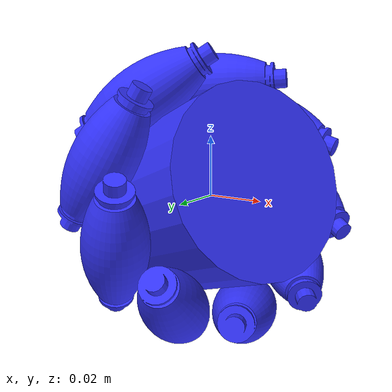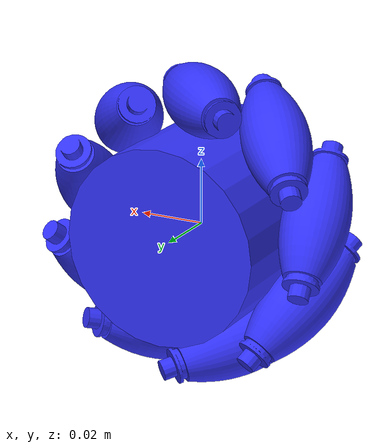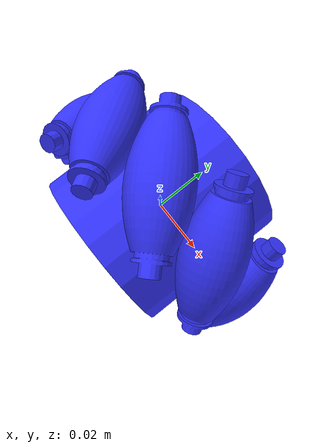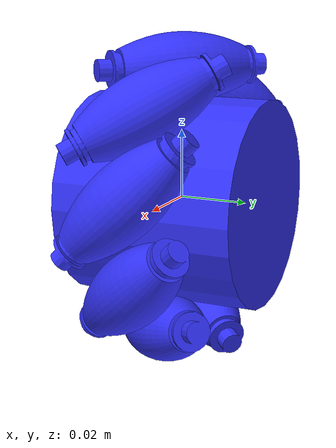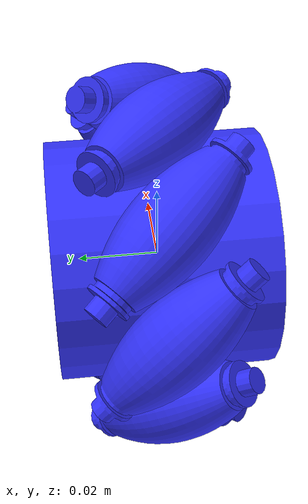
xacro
<?xml version="1.0"?>
<robot name="heale" xmlns:xacro="http://www.ros.org/wiki/xacro">

    <!-- Include wheel 1 *********************************************************************** -->
    <xacro:include filename="wheel_1.xacro"/>

    <!-- Include roller *********************************************************************** -->
    <xacro:include filename="roller.xacro"/>

    <!--front-left wheel**************************************************************************************************** -->
    <xacro:wheel_1 fl_or_br="front_left" />

    <!--front-left roller 1**************************************************************************************************** -->
    <xacro:roller frnt_or_bk="front" lft_or_rght="left" number="1" x="0" z="0.03833567" r="0" p="0.785398" y="0" />

    <!--front-left roller 2**************************************************************************************************** -->
    <xacro:roller frnt_or_bk="front" lft_or_rght="left" number="2"  x="0.02464169" z="0.02936683" r="-0.0872664" p="0.785398" y="0.698132" />

    <!--front-left roller 3**************************************************************************************************** -->
    <xacro:roller frnt_or_bk="front" lft_or_rght="left" number="3"  x="0.03775327" z="0.00665692" r="-0.1745328" p="0.785398" y="1.396263" />

    <!--front-left roller 4**************************************************************************************************** -->
    <xacro:roller frnt_or_bk="front" lft_or_rght="left" number="4"  x="0.03319966" z="-0.01916784" r="-0.26171799" p="0.785398" y="2.094395" />

    <!--front-left roller 5**************************************************************************************************** -->
    <xacro:roller frnt_or_bk="front" lft_or_rght="left" number="5"  x="0.01311157" z="-0.03602375" r="-0.26171799" p="0.785398" y="2.792527" />

    <!--front-left roller 6**************************************************************************************************** -->
    <xacro:roller frnt_or_bk="front" lft_or_rght="left" number="6"  x="-0.01311157" z="-0.03602375" r="-0.26171799" p="0.785398" y="3.490659" />

    <!--front-left roller 7**************************************************************************************************** -->
    <xacro:roller frnt_or_bk="front" lft_or_rght="left" number="7"  x="-0.03319966" z="-0.01916784" r="-0.26171799" p="0.785398" y="4.18879" />

    <!--front-left roller 8**************************************************************************************************** -->
    <xacro:roller frnt_or_bk="front" lft_or_rght="left" number="8"  x="-0.03775327" z="0.00665692" r="-0.1745328" p="0.785398" y="4.886922" />

    <!--front-left roller 9**************************************************************************************************** -->
    <xacro:roller frnt_or_bk="front" lft_or_rght="left" number="9"  x="-0.02464169" z="0.02936683" r="-0.0872664" p="0.785398" y="5.585054" />

</robot>

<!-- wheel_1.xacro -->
<robot name="heale" xmlns:xacro="http://www.ros.org/wiki/xacro">

<!-- Wheels macro ******************************************************************************************-->
    <xacro:macro name="wheel_1" params="fl_or_br">
        <!-- Wheel link -->
        <link name="${fl_or_br}_wheel">
            <inertial>
                <origin xyz="0.0 0.0 0.0" rpy="0.0 0.0 0.0" />
                <mass value="0.1" />
                <inertia ixx="0.01" ixy="0.0" ixz="0.0" iyy="0.01" iyz="0.0" izz="0.01" />
            </inertial>
            <visual name="">
                <origin xyz="0.0 0.0 0.0" rpy="1.57079632679 0.0 0.0" />
                <geometry>
                    <cylinder radius="0.030253505" length="0.05332" />
                </geometry>
                <material name="blue">
                    <color rgba="0.2 0.2 1 1"/>
                </material>
            </visual>
            <collision>
                <origin xyz="0.0 0.0 0.0" rpy="1.57079632679 0.0 0.0" />
                <geometry>
                    <cylinder radius="0.023253505" length="0.05332" />
                </geometry>
            </collision>
        </link>

        <!-- Foot print (Dummy Link)********************************************************************** -->
        <link name="foot_print">
        </link>

        <joint name="fp_to_main_body" type="fixed">
            <parent link="foot_print"/>
            <child link="${fl_or_br}_wheel"/>
            <origin xyz="0.0 0.0 0.0" rpy="0.0 0.0 0.0"/>
        </joint>

    </xacro:macro>

</robot>

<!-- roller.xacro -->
<robot name="heale" xmlns:xacro="http://www.ros.org/wiki/xacro">

  <!-- Rubber Wheel Macro -->
  <xacro:macro name="roller" params="frnt_or_bk lft_or_rght number x z r p y">

    <!-- Rubber Wheel link -->
    <link name="{frnt_or_bk}_${lft_or_rght}_${number}_roller">
      <inertial>
        <origin xyz="-9.3675E-17 -1.0686E-15 1.3045E-15" rpy="0 0 0" />
        <mass value="0.0052688" />
        <inertia
          ixx="7.0476E-07" ixy="-5.6311E-09" ixz="5.6325E-09"
          iyy="4.4776E-07" iyz="2.5718E-07" izz="4.4764E-07" />
      </inertial>

      <visual>
        <origin xyz="0.0 0.0 0.0" rpy="0 0 0" />
        <geometry>
          <mesh filename="package://mecanum_description/meshes/roller.STL" />
        </geometry>
        <material name="blue">
          <color rgba="0.2 0.2 1 1"/>
        </material>
      </visual>

      <collision>
        <origin xyz="0.0 0.0 0.0" rpy="0 0 0" />
        <geometry>
          <mesh filename="package://mecanum_description/meshes/roller.STL" />
        </geometry>
      </collision>
    </link>

    <link name="{frnt_or_bk}_${lft_or_rght}_${number}_dummy_roller">
    </link>

    <joint name="${frnt_or_bk}_${lft_or_rght}_${number}_dummy_roller_joint" type="fixed">
      <origin rpy="0 ${y} 0" xyz="${x} 0 ${z}" />
      <parent link="${frnt_or_bk}_${lft_or_rght}_wheel"/>
      <child link="{frnt_or_bk}_${lft_or_rght}_${number}_dummy_roller"/>
    </joint>

    <!-- Joint -->
    <joint name="${frnt_or_bk}_${lft_or_rght}_${number}_roller_joint" type="continuous">
      <origin rpy="0 0 ${p}" xyz="0 0 0" />
      <parent link="{frnt_or_bk}_${lft_or_rght}_${number}_dummy_roller"/>
      <child link="{frnt_or_bk}_${lft_or_rght}_${number}_roller"/>
      <axis xyz="0 1 0" />
    </joint>

    <!-- Gazebo plugin params -->
    <gazebo reference="{frnt_or_bk}_${lft_or_rght}_${number}_roller">
      <mu1>1e14</mu1>
      <mu2>1e14</mu2>
      <kp>1e12</kp>
      <kd>10.0</kd>
      <minDepth>0.001</minDepth>
      <maxVel>0.1</maxVel>
      <fdir1>0 1 0</fdir1>
    </gazebo>

  </xacro:macro>

</robot>
